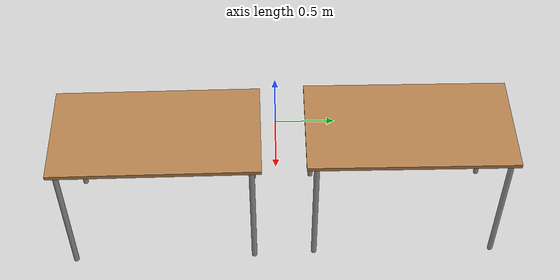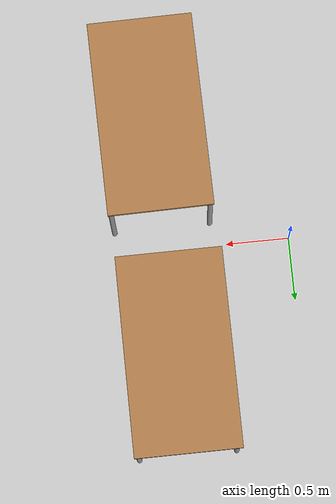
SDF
<sdf version="1.6">
 <world name="default">
  <light name="sun" type="directional">
   <pose>0 0 10 0 -0 0</pose>
   <diffuse>0.8 0.8 0.8 1</diffuse>
   <specular>0.2 0.2 0.2 1</specular>
   <attenuation>
    <range>1000</range>
    <constant>0.9</constant>
    <linear>0.01</linear>
    <quadratic>0.001</quadratic>
   </attenuation>
   <direction>-0.5 0.1 -0.9</direction>
  </light>
  <physics name="dart_1ms" default="1" type="ode">
   <max_step_size>0.001</max_step_size>
   <real_time_factor>1</real_time_factor>
   <real_time_update_rate>1000</real_time_update_rate>
  </physics>
  <physics name="dart_2ms" default="1" type="dart">
   <max_step_size>0.002</max_step_size>
   <real_time_factor>1</real_time_factor>
   <real_time_update_rate>500</real_time_update_rate>
  </physics>
  <physics name="dart_3ms" default="0" type="dart">
   <max_step_size>0.003</max_step_size>
   <real_time_factor>1</real_time_factor>
   <real_time_update_rate>333</real_time_update_rate>
  </physics>
  <model name="ground_plane">
   <static>1</static>
   <link name="link">
    <collision name="collision">
     <geometry><plane><normal>0 0 1</normal><size>100 100</size></plane></geometry>
     <surface><friction><ode><mu>100</mu><mu2>50</mu2></ode></friction></surface>
    </collision>
    <visual name="visual">
     <cast_shadows>0</cast_shadows>
     <geometry><plane><normal>0 0 1</normal><size>100 100</size></plane></geometry>
     <material>
      <script><uri>file://media/materials/scripts/gazebo.material</uri><name>Gazebo/Grey</name></script>
     </material>
    </visual>
   </link>
  </model>
  <scene><ambient>0.4 0.4 0.4 1</ambient><background>0.7 0.7 0.7 1</background><shadows>1</shadows></scene>
  <audio><device>default</device></audio>
  <spherical_coordinates>
   <surface_model>EARTH_WGS84</surface_model>
   <latitude_deg>0</latitude_deg>
   <longitude_deg>0</longitude_deg>
   <elevation>0</elevation>
   <heading_deg>0</heading_deg>
  </spherical_coordinates>
  <gravity>0 0 -9.8</gravity>
  <magnetic_field>6e-06 2.3e-05 -4.2e-05</magnetic_field>
  <atmosphere type="adiabatic"/>
  <model name="table">
   <static>1</static>
   <link name="link">
    <collision name="surface">
     <pose>0 0 1 0 -0 0</pose>
     <geometry><box><size>1.5 0.8 0.03</size></box></geometry>
     <surface><friction><ode><mu>0.6</mu><mu2>0.6</mu2></ode></friction></surface>
    </collision>
    <visual name="visual1">
     <pose>0 0 1 0 -0 0</pose>
     <geometry><box><size>1.5 0.8 0.03</size></box></geometry>
     <material>
      <script><uri>file://media/materials/scripts/gazebo.material</uri><name>Gazebo/Wood</name></script>
     </material>
    </visual>
    <collision name="front_left_leg">
     <pose>0.68 0.38 0.5 0 -0 0</pose>
     <geometry><cylinder><radius>0.02</radius><length>1</length></cylinder></geometry>
    </collision>
    <visual name="front_left_leg">
     <pose>0.68 0.38 0.5 0 -0 0</pose>
     <geometry><cylinder><radius>0.02</radius><length>1</length></cylinder></geometry>
     <material>
      <script><uri>file://media/materials/scripts/gazebo.material</uri><name>Gazebo/Grey</name></script>
     </material>
    </visual>
    <collision name="front_right_leg">
     <pose>0.68 -0.38 0.5 0 -0 0</pose>
     <geometry><cylinder><radius>0.02</radius><length>1</length></cylinder></geometry>
    </collision>
    <visual name="front_right_leg">
     <pose>0.68 -0.38 0.5 0 -0 0</pose>
     <geometry><cylinder><radius>0.02</radius><length>1</length></cylinder></geometry>
     <material>
      <script><uri>file://media/materials/scripts/gazebo.material</uri><name>Gazebo/Grey</name></script>
     </material>
    </visual>
    <collision name="back_right_leg">
     <pose>-0.68 -0.38 0.5 0 -0 0</pose>
     <geometry><cylinder><radius>0.02</radius><length>1</length></cylinder></geometry>
    </collision>
    <visual name="back_right_leg">
     <pose>-0.68 -0.38 0.5 0 -0 0</pose>
     <geometry><cylinder><radius>0.02</radius><length>1</length></cylinder></geometry>
     <material>
      <script><uri>file://media/materials/scripts/gazebo.material</uri><name>Gazebo/Grey</name></script>
     </material>
    </visual>
    <collision name="back_left_leg">
     <pose>-0.68 0.38 0.5 0 -0 0</pose>
     <geometry><cylinder><radius>0.02</radius><length>1</length></cylinder></geometry>
    </collision>
    <visual name="back_left_leg">
     <pose>-0.68 0.38 0.5 0 -0 0</pose>
     <geometry><cylinder><radius>0.02</radius><length>1</length></cylinder></geometry>
     <material>
      <script><uri>file://media/materials/scripts/gazebo.material</uri><name>Gazebo/Grey</name></script>
     </material>
    </visual>
   </link>
   <pose>0.968606 0.955225 0 0 -0 1.5709</pose>
  </model>
  <model name="table_0">
   <static>1</static>
   <link name="link">
    <collision name="surface">
     <pose>0 0 1 0 -0 0</pose>
     <geometry><box><size>1.5 0.8 0.03</size></box></geometry>
     <surface><friction><ode><mu>0.6</mu><mu2>0.6</mu2></ode></friction></surface>
    </collision>
    <visual name="visual1">
     <pose>0 0 1 0 -0 0</pose>
     <geometry><box><size>1.5 0.8 0.03</size></box></geometry>
     <material>
      <script><uri>file://media/materials/scripts/gazebo.material</uri><name>Gazebo/Wood</name></script>
     </material>
    </visual>
    <collision name="front_left_leg">
     <pose>0.68 0.38 0.5 0 -0 0</pose>
     <geometry><cylinder><radius>0.02</radius><length>1</length></cylinder></geometry>
    </collision>
    <visual name="front_left_leg">
     <pose>0.68 0.38 0.5 0 -0 0</pose>
     <geometry><cylinder><radius>0.02</radius><length>1</length></cylinder></geometry>
     <material>
      <script><uri>file://media/materials/scripts/gazebo.material</uri><name>Gazebo/Grey</name></script>
     </material>
    </visual>
    <collision name="front_right_leg">
     <pose>0.68 -0.38 0.5 0 -0 0</pose>
     <geometry><cylinder><radius>0.02</radius><length>1</length></cylinder></geometry>
    </collision>
    <visual name="front_right_leg">
     <pose>0.68 -0.38 0.5 0 -0 0</pose>
     <geometry><cylinder><radius>0.02</radius><length>1</length></cylinder></geometry>
     <material>
      <script><uri>file://media/materials/scripts/gazebo.material</uri><name>Gazebo/Grey</name></script>
     </material>
    </visual>
    <collision name="back_right_leg">
     <pose>-0.68 -0.38 0.5 0 -0 0</pose>
     <geometry><cylinder><radius>0.02</radius><length>1</length></cylinder></geometry>
    </collision>
    <visual name="back_right_leg">
     <pose>-0.68 -0.38 0.5 0 -0 0</pose>
     <geometry><cylinder><radius>0.02</radius><length>1</length></cylinder></geometry>
     <material>
      <script><uri>file://media/materials/scripts/gazebo.material</uri><name>Gazebo/Grey</name></script>
     </material>
    </visual>
    <collision name="back_left_leg">
     <pose>-0.68 0.38 0.5 0 -0 0</pose>
     <geometry><cylinder><radius>0.02</radius><length>1</length></cylinder></geometry>
    </collision>
    <visual name="back_left_leg">
     <pose>-0.68 0.38 0.5 0 -0 0</pose>
     <geometry><cylinder><radius>0.02</radius><length>1</length></cylinder></geometry>
     <material>
      <script><uri>file://media/materials/scripts/gazebo.material</uri><name>Gazebo/Grey</name></script>
     </material>
    </visual>
   </link>
   <pose>1.00112 -0.864288 0 0 -0 1.58397</pose>
  </model>
 </world>
</sdf>
